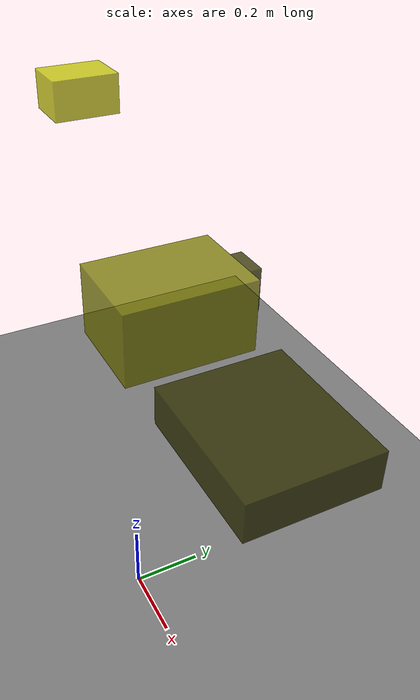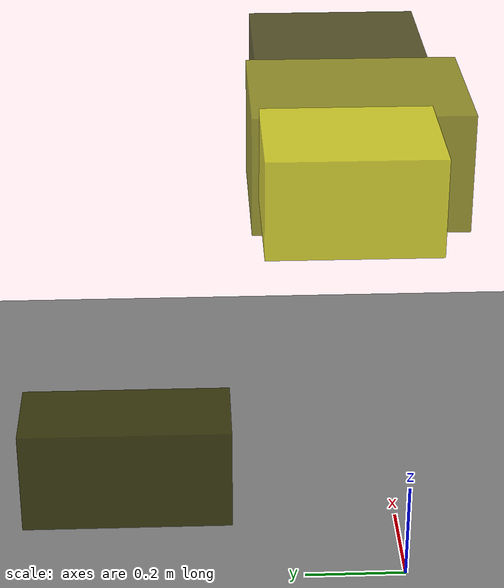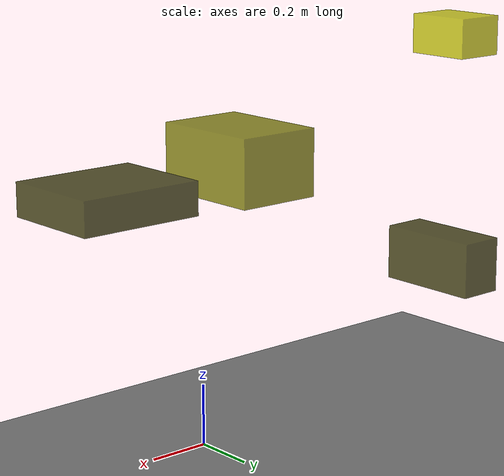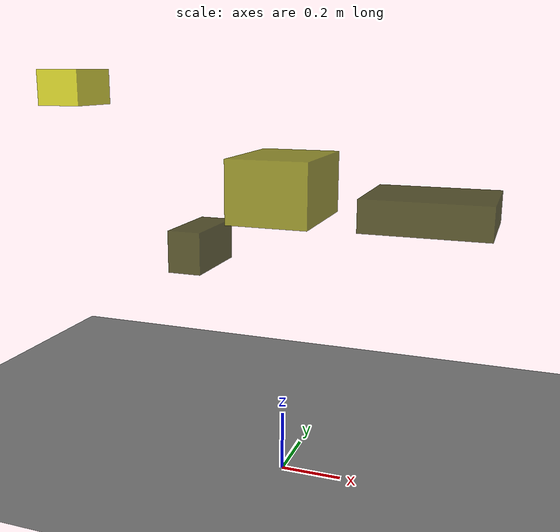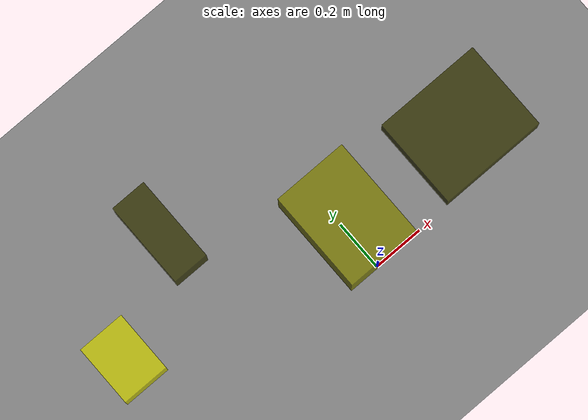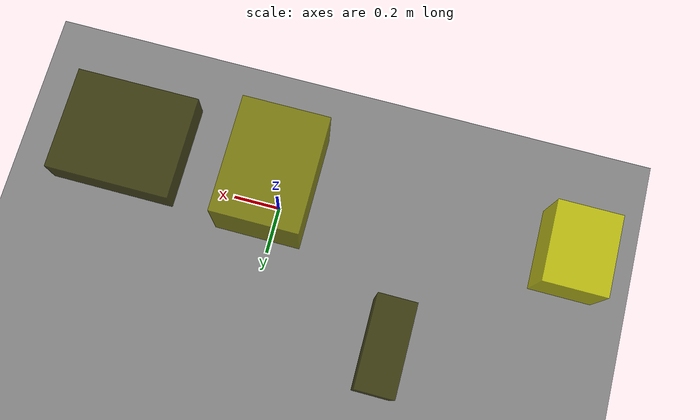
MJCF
<?xml version="1.0"?>
<mujoco model="obstacle_scene">
  <compiler angle="radian" coordinate="local"/>
  <option timestep="0.001" gravity="0 0 -9.81"/>

  <asset>
    <material name="obstacle_mat" rgba="0.8 0.8 0.0 0.8"/>
    <material name="ground_mat" rgba="0.5 0.5 0.5 1"/>
  </asset>

  <worldbody>
    <!-- Ground plane -->
    <geom name="ground" type="plane" size="3 3 0.1" material="ground_mat"/>

    <!-- Obstacles -->
    <body name="obstacle_0" pos="-0.528573 0.520083 0.628246">
      <geom name="obs_0" type="box" size="0.067668 0.161482 0.082985" rgba="0.2 0.2 0.0 0.8"/>
    </body>
    <body name="obstacle_1" pos="-0.045235 0.128553 0.943191">
      <geom name="obs_1" type="box" size="0.136212 0.183862 0.104776" rgba="0.5 0.5 0.0 0.8"/>
    </body>
    <body name="obstacle_2" pos="-0.891651 0.219676 1.256824">
      <geom name="obs_2" type="box" size="0.083564 0.108153 0.063717" rgba="0.8 0.8 0.0 0.8"/>
    </body>
    <body name="obstacle_3" pos="0.438807 0.119788 0.892964">
      <geom name="obs_3" type="box" size="0.197100 0.166092 0.051675" rgba="0.2 0.2 0.0 0.8"/>
    </body>
  </worldbody>
</mujoco>
